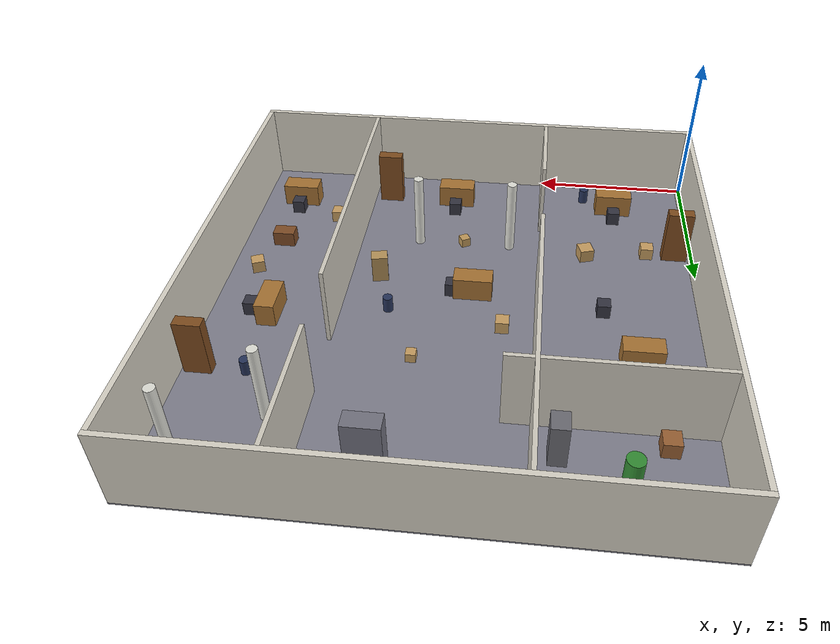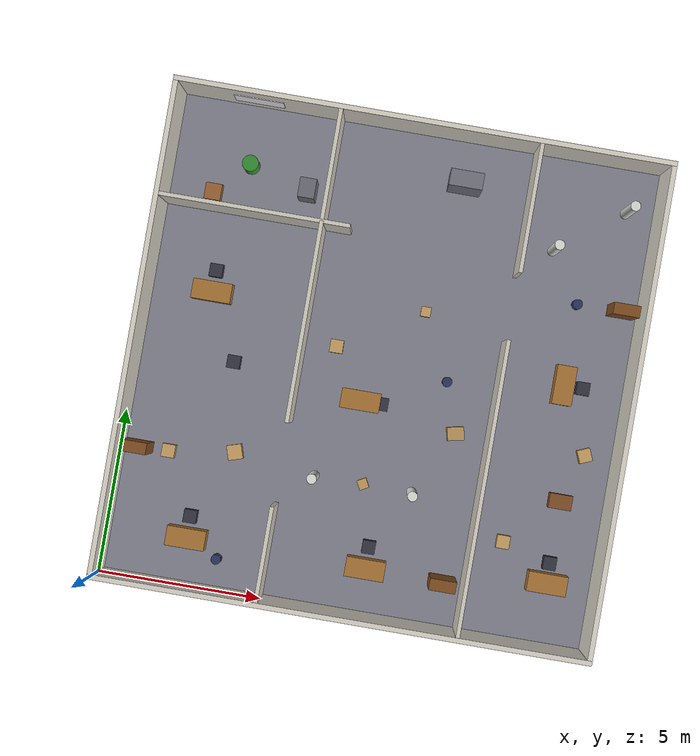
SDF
<?xml version="1.0" ?>
<sdf version="1.6">
  <world name="cluttered_office">

    <scene>
      <ambient>0.4 0.4 0.4 1</ambient>
      <background>0.7 0.7 0.7 1</background>
      <shadows>true</shadows>
    </scene>

    <physics type="ode">
      <real_time_update_rate>1000</real_time_update_rate>
      <max_step_size>0.001</max_step_size>
      <real_time_factor>1</real_time_factor>
      <ode>
        <solver>
          <type>quick</type>
          <iters>150</iters>
          <precon_iters>0</precon_iters>
          <sor>1.4</sor>
          <use_dynamic_moi_rescaling>1</use_dynamic_moi_rescaling>
        </solver>
        <constraints>
          <cfm>0</cfm>
          <erp>0.2</erp>
          <contact_max_correcting_vel>0.5</contact_max_correcting_vel>
          <contact_surface_layer>0.001</contact_surface_layer>
        </constraints>
      </ode>
    </physics>

    <include>
      <uri>model://sun</uri>
    </include>

    <!-- ===== GROUND PLANE ===== -->
    <model name="floor">
      <static>true</static>
      <pose>7.5 7.5 -0.025 0 0 0</pose>
      <link name="floor_link">
        <collision name="floor_collision">
          <geometry>
            <box>
              <size>15 15 0.05</size>
            </box>
          </geometry>
          <surface>
            <friction>
              <ode>
                <mu>1.0</mu>
                <mu2>1.0</mu2>
              </ode>
            </friction>
          </surface>
        </collision>
        <visual name="floor_visual">
          <geometry>
            <box>
              <size>15 15 0.05</size>
            </box>
          </geometry>
          <material>
            <ambient>0.35 0.35 0.38 1</ambient>
            <diffuse>0.5 0.5 0.55 1</diffuse>
            <specular>0.1 0.1 0.1 1</specular>
          </material>
        </visual>
      </link>
    </model>

    <!-- ===== OUTER WALLS ===== -->
    <model name="wall_south">
      <static>true</static>
      <pose>7.5 0.075 1.25 0 0 0</pose>
      <link name="wall_south_link">
        <collision name="wall_south_collision">
          <geometry>
            <box>
              <size>15 0.15 2.5</size>
            </box>
          </geometry>
        </collision>
        <visual name="wall_south_visual">
          <geometry>
            <box>
              <size>15 0.15 2.5</size>
            </box>
          </geometry>
          <material>
            <ambient>0.75 0.73 0.68 1</ambient>
            <diffuse>0.85 0.83 0.78 1</diffuse>
            <specular>0.05 0.05 0.05 1</specular>
          </material>
        </visual>
      </link>
    </model>

    <model name="wall_north">
      <static>true</static>
      <pose>7.5 14.925 1.25 0 0 0</pose>
      <link name="wall_north_link">
        <collision name="wall_north_collision">
          <geometry>
            <box>
              <size>15 0.15 2.5</size>
            </box>
          </geometry>
        </collision>
        <visual name="wall_north_visual">
          <geometry>
            <box>
              <size>15 0.15 2.5</size>
            </box>
          </geometry>
          <material>
            <ambient>0.75 0.73 0.68 1</ambient>
            <diffuse>0.85 0.83 0.78 1</diffuse>
            <specular>0.05 0.05 0.05 1</specular>
          </material>
        </visual>
      </link>
    </model>

    <model name="wall_west">
      <static>true</static>
      <pose>0.075 7.5 1.25 0 0 0</pose>
      <link name="wall_west_link">
        <collision name="wall_west_collision">
          <geometry>
            <box>
              <size>0.15 14.7 2.5</size>
            </box>
          </geometry>
        </collision>
        <visual name="wall_west_visual">
          <geometry>
            <box>
              <size>0.15 14.7 2.5</size>
            </box>
          </geometry>
          <material>
            <ambient>0.75 0.73 0.68 1</ambient>
            <diffuse>0.85 0.83 0.78 1</diffuse>
            <specular>0.05 0.05 0.05 1</specular>
          </material>
        </visual>
      </link>
    </model>

    <model name="wall_east">
      <static>true</static>
      <pose>14.925 7.5 1.25 0 0 0</pose>
      <link name="wall_east_link">
        <collision name="wall_east_collision">
          <geometry>
            <box>
              <size>0.15 14.7 2.5</size>
            </box>
          </geometry>
        </collision>
        <visual name="wall_east_visual">
          <geometry>
            <box>
              <size>0.15 14.7 2.5</size>
            </box>
          </geometry>
          <material>
            <ambient>0.75 0.73 0.68 1</ambient>
            <diffuse>0.85 0.83 0.78 1</diffuse>
            <specular>0.05 0.05 0.05 1</specular>
          </material>
        </visual>
      </link>
    </model>

    <!-- ===== INTERIOR WALL A (x=5) ===== -->
    <model name="interior_wall_A_lower">
      <static>true</static>
      <pose>5 1.575 1.25 0 0 0</pose>
      <link name="interior_wall_A_lower_link">
        <collision name="interior_wall_A_lower_collision">
          <geometry>
            <box>
              <size>0.12 2.85 2.5</size>
            </box>
          </geometry>
        </collision>
        <visual name="interior_wall_A_lower_visual">
          <geometry>
            <box>
              <size>0.12 2.85 2.5</size>
            </box>
          </geometry>
          <material>
            <ambient>0.72 0.70 0.65 1</ambient>
            <diffuse>0.82 0.80 0.75 1</diffuse>
            <specular>0.05 0.05 0.05 1</specular>
          </material>
        </visual>
      </link>
    </model>

    <model name="interior_wall_A_upper">
      <static>true</static>
      <pose>5 10.175 1.25 0 0 0</pose>
      <link name="interior_wall_A_upper_link">
        <collision name="interior_wall_A_upper_collision">
          <geometry>
            <box>
              <size>0.12 9.35 2.5</size>
            </box>
          </geometry>
        </collision>
        <visual name="interior_wall_A_upper_visual">
          <geometry>
            <box>
              <size>0.12 9.35 2.5</size>
            </box>
          </geometry>
          <material>
            <ambient>0.72 0.70 0.65 1</ambient>
            <diffuse>0.82 0.80 0.75 1</diffuse>
            <specular>0.05 0.05 0.05 1</specular>
          </material>
        </visual>
      </link>
    </model>

    <!-- ===== INTERIOR WALL B (x=11) ===== -->
    <model name="interior_wall_B_lower">
      <static>true</static>
      <pose>11 4.575 1.25 0 0 0</pose>
      <link name="interior_wall_B_lower_link">
        <collision name="interior_wall_B_lower_collision">
          <geometry>
            <box>
              <size>0.12 8.85 2.5</size>
            </box>
          </geometry>
        </collision>
        <visual name="interior_wall_B_lower_visual">
          <geometry>
            <box>
              <size>0.12 8.85 2.5</size>
            </box>
          </geometry>
          <material>
            <ambient>0.72 0.70 0.65 1</ambient>
            <diffuse>0.82 0.80 0.75 1</diffuse>
            <specular>0.05 0.05 0.05 1</specular>
          </material>
        </visual>
      </link>
    </model>

    <model name="interior_wall_B_upper">
      <static>true</static>
      <pose>11 12.925 1.25 0 0 0</pose>
      <link name="interior_wall_B_upper_link">
        <collision name="interior_wall_B_upper_collision">
          <geometry>
            <box>
              <size>0.12 3.85 2.5</size>
            </box>
          </geometry>
        </collision>
        <visual name="interior_wall_B_upper_visual">
          <geometry>
            <box>
              <size>0.12 3.85 2.5</size>
            </box>
          </geometry>
          <material>
            <ambient>0.72 0.70 0.65 1</ambient>
            <diffuse>0.82 0.80 0.75 1</diffuse>
            <specular>0.05 0.05 0.05 1</specular>
          </material>
        </visual>
      </link>
    </model>

    <!-- ===== INTERIOR WALL C (horizontal, y=11.5) ===== -->
    <model name="interior_wall_C">
      <static>true</static>
      <pose>3 11.5 1.25 0 0 0</pose>
      <link name="interior_wall_C_link">
        <collision name="interior_wall_C_collision">
          <geometry>
            <box>
              <size>5.7 0.12 2.5</size>
            </box>
          </geometry>
        </collision>
        <visual name="interior_wall_C_visual">
          <geometry>
            <box>
              <size>5.7 0.12 2.5</size>
            </box>
          </geometry>
          <material>
            <ambient>0.72 0.70 0.65 1</ambient>
            <diffuse>0.82 0.80 0.75 1</diffuse>
            <specular>0.05 0.05 0.05 1</specular>
          </material>
        </visual>
      </link>
    </model>

    <!-- ===== DESKS ===== -->
    <model name="desk_01">
      <static>true</static>
      <pose>2.5 1.5 0.375 0 0 0</pose>
      <link name="desk_01_link">
        <collision name="desk_01_collision">
          <geometry>
            <box>
              <size>1.2 0.6 0.75</size>
            </box>
          </geometry>
        </collision>
        <visual name="desk_01_visual">
          <geometry>
            <box>
              <size>1.2 0.6 0.75</size>
            </box>
          </geometry>
          <material>
            <ambient>0.55 0.35 0.15 1</ambient>
            <diffuse>0.65 0.45 0.2 1</diffuse>
            <specular>0.1 0.1 0.1 1</specular>
          </material>
        </visual>
      </link>
    </model>

    <model name="desk_02">
      <static>true</static>
      <pose>8 1.5 0.375 0 0 0</pose>
      <link name="desk_02_link">
        <collision name="desk_02_collision">
          <geometry>
            <box>
              <size>1.2 0.6 0.75</size>
            </box>
          </geometry>
        </collision>
        <visual name="desk_02_visual">
          <geometry>
            <box>
              <size>1.2 0.6 0.75</size>
            </box>
          </geometry>
          <material>
            <ambient>0.55 0.35 0.15 1</ambient>
            <diffuse>0.65 0.45 0.2 1</diffuse>
            <specular>0.1 0.1 0.1 1</specular>
          </material>
        </visual>
      </link>
    </model>

    <model name="desk_03">
      <static>true</static>
      <pose>7 6.5 0.375 0 0 0</pose>
      <link name="desk_03_link">
        <collision name="desk_03_collision">
          <geometry>
            <box>
              <size>1.2 0.6 0.75</size>
            </box>
          </geometry>
        </collision>
        <visual name="desk_03_visual">
          <geometry>
            <box>
              <size>1.2 0.6 0.75</size>
            </box>
          </geometry>
          <material>
            <ambient>0.55 0.35 0.15 1</ambient>
            <diffuse>0.65 0.45 0.2 1</diffuse>
            <specular>0.1 0.1 0.1 1</specular>
          </material>
        </visual>
      </link>
    </model>

    <model name="desk_04">
      <static>true</static>
      <pose>2 9 0.375 0 0 0</pose>
      <link name="desk_04_link">
        <collision name="desk_04_collision">
          <geometry>
            <box>
              <size>1.2 0.6 0.75</size>
            </box>
          </geometry>
        </collision>
        <visual name="desk_04_visual">
          <geometry>
            <box>
              <size>1.2 0.6 0.75</size>
            </box>
          </geometry>
          <material>
            <ambient>0.55 0.35 0.15 1</ambient>
            <diffuse>0.65 0.45 0.2 1</diffuse>
            <specular>0.1 0.1 0.1 1</specular>
          </material>
        </visual>
      </link>
    </model>

    <model name="desk_05">
      <static>true</static>
      <pose>13.5 2 0.375 0 0 0</pose>
      <link name="desk_05_link">
        <collision name="desk_05_collision">
          <geometry>
            <box>
              <size>1.2 0.6 0.75</size>
            </box>
          </geometry>
        </collision>
        <visual name="desk_05_visual">
          <geometry>
            <box>
              <size>1.2 0.6 0.75</size>
            </box>
          </geometry>
          <material>
            <ambient>0.55 0.35 0.15 1</ambient>
            <diffuse>0.65 0.45 0.2 1</diffuse>
            <specular>0.1 0.1 0.1 1</specular>
          </material>
        </visual>
      </link>
    </model>

    <model name="desk_06">
      <static>true</static>
      <pose>13 8 0.375 0 0 1.57</pose>
      <link name="desk_06_link">
        <collision name="desk_06_collision">
          <geometry>
            <box>
              <size>1.2 0.6 0.75</size>
            </box>
          </geometry>
        </collision>
        <visual name="desk_06_visual">
          <geometry>
            <box>
              <size>1.2 0.6 0.75</size>
            </box>
          </geometry>
          <material>
            <ambient>0.55 0.35 0.15 1</ambient>
            <diffuse>0.65 0.45 0.2 1</diffuse>
            <specular>0.1 0.1 0.1 1</specular>
          </material>
        </visual>
      </link>
    </model>

    <!-- ===== CHAIRS ===== -->
    <model name="chair_01">
      <static>true</static>
      <pose>2.5 2.15 0.225 0 0 0</pose>
      <link name="chair_01_link">
        <collision name="chair_01_collision">
          <geometry>
            <box>
              <size>0.4 0.4 0.45</size>
            </box>
          </geometry>
        </collision>
        <visual name="chair_01_visual">
          <geometry>
            <box>
              <size>0.4 0.4 0.45</size>
            </box>
          </geometry>
          <material>
            <ambient>0.15 0.15 0.18 1</ambient>
            <diffuse>0.2 0.2 0.25 1</diffuse>
            <specular>0.05 0.05 0.05 1</specular>
          </material>
        </visual>
      </link>
    </model>

    <model name="chair_02">
      <static>true</static>
      <pose>8 2.15 0.225 0 0 0</pose>
      <link name="chair_02_link">
        <collision name="chair_02_collision">
          <geometry>
            <box>
              <size>0.4 0.4 0.45</size>
            </box>
          </geometry>
        </collision>
        <visual name="chair_02_visual">
          <geometry>
            <box>
              <size>0.4 0.4 0.45</size>
            </box>
          </geometry>
          <material>
            <ambient>0.15 0.15 0.18 1</ambient>
            <diffuse>0.2 0.2 0.25 1</diffuse>
            <specular>0.05 0.05 0.05 1</specular>
          </material>
        </visual>
      </link>
    </model>

    <model name="chair_03">
      <static>true</static>
      <pose>7.65 6.5 0.225 0 0 0</pose>
      <link name="chair_03_link">
        <collision name="chair_03_collision">
          <geometry>
            <box>
              <size>0.4 0.4 0.45</size>
            </box>
          </geometry>
        </collision>
        <visual name="chair_03_visual">
          <geometry>
            <box>
              <size>0.4 0.4 0.45</size>
            </box>
          </geometry>
          <material>
            <ambient>0.15 0.15 0.18 1</ambient>
            <diffuse>0.2 0.2 0.25 1</diffuse>
            <specular>0.05 0.05 0.05 1</specular>
          </material>
        </visual>
      </link>
    </model>

    <model name="chair_04">
      <static>true</static>
      <pose>2 9.65 0.225 0 0 0</pose>
      <link name="chair_04_link">
        <collision name="chair_04_collision">
          <geometry>
            <box>
              <size>0.4 0.4 0.45</size>
            </box>
          </geometry>
        </collision>
        <visual name="chair_04_visual">
          <geometry>
            <box>
              <size>0.4 0.4 0.45</size>
            </box>
          </geometry>
          <material>
            <ambient>0.15 0.15 0.18 1</ambient>
            <diffuse>0.2 0.2 0.25 1</diffuse>
            <specular>0.05 0.05 0.05 1</specular>
          </material>
        </visual>
      </link>
    </model>

    <model name="chair_05">
      <static>true</static>
      <pose>13.5 2.6 0.225 0 0 0</pose>
      <link name="chair_05_link">
        <collision name="chair_05_collision">
          <geometry>
            <box>
              <size>0.4 0.4 0.45</size>
            </box>
          </geometry>
        </collision>
        <visual name="chair_05_visual">
          <geometry>
            <box>
              <size>0.4 0.4 0.45</size>
            </box>
          </geometry>
          <material>
            <ambient>0.15 0.15 0.18 1</ambient>
            <diffuse>0.2 0.2 0.25 1</diffuse>
            <specular>0.05 0.05 0.05 1</specular>
          </material>
        </visual>
      </link>
    </model>

    <model name="chair_06">
      <static>true</static>
      <pose>3 7 0.225 0 0 0</pose>
      <link name="chair_06_link">
        <collision name="chair_06_collision">
          <geometry>
            <box>
              <size>0.4 0.4 0.45</size>
            </box>
          </geometry>
        </collision>
        <visual name="chair_06_visual">
          <geometry>
            <box>
              <size>0.4 0.4 0.45</size>
            </box>
          </geometry>
          <material>
            <ambient>0.15 0.15 0.18 1</ambient>
            <diffuse>0.2 0.2 0.25 1</diffuse>
            <specular>0.05 0.05 0.05 1</specular>
          </material>
        </visual>
      </link>
    </model>

    <model name="chair_07">
      <static>true</static>
      <pose>13.6 8 0.225 0 0 0</pose>
      <link name="chair_07_link">
        <collision name="chair_07_collision">
          <geometry>
            <box>
              <size>0.4 0.4 0.45</size>
            </box>
          </geometry>
        </collision>
        <visual name="chair_07_visual">
          <geometry>
            <box>
              <size>0.4 0.4 0.45</size>
            </box>
          </geometry>
          <material>
            <ambient>0.15 0.15 0.18 1</ambient>
            <diffuse>0.2 0.2 0.25 1</diffuse>
            <specular>0.05 0.05 0.05 1</specular>
          </material>
        </visual>
      </link>
    </model>

    <!-- ===== BOOKSHELVES / CABINETS ===== -->
    <model name="bookshelf_01">
      <static>true</static>
      <pose>0.6 4 0.9 0 0 0</pose>
      <link name="bookshelf_01_link">
        <collision name="bookshelf_01_collision">
          <geometry>
            <box>
              <size>0.8 0.35 1.8</size>
            </box>
          </geometry>
        </collision>
        <visual name="bookshelf_01_visual">
          <geometry>
            <box>
              <size>0.8 0.35 1.8</size>
            </box>
          </geometry>
          <material>
            <ambient>0.4 0.2 0.08 1</ambient>
            <diffuse>0.5 0.3 0.12 1</diffuse>
            <specular>0.08 0.08 0.08 1</specular>
          </material>
        </visual>
      </link>
    </model>

    <model name="bookshelf_02">
      <static>true</static>
      <pose>10.35 1.5 0.9 0 0 0</pose>
      <link name="bookshelf_02_link">
        <collision name="bookshelf_02_collision">
          <geometry>
            <box>
              <size>0.8 0.35 1.8</size>
            </box>
          </geometry>
        </collision>
        <visual name="bookshelf_02_visual">
          <geometry>
            <box>
              <size>0.8 0.35 1.8</size>
            </box>
          </geometry>
          <material>
            <ambient>0.4 0.2 0.08 1</ambient>
            <diffuse>0.5 0.3 0.12 1</diffuse>
            <specular>0.08 0.08 0.08 1</specular>
          </material>
        </visual>
      </link>
    </model>

    <model name="bookshelf_03">
      <static>true</static>
      <pose>14.35 10.5 0.9 0 0 0</pose>
      <link name="bookshelf_03_link">
        <collision name="bookshelf_03_collision">
          <geometry>
            <box>
              <size>0.8 0.35 1.8</size>
            </box>
          </geometry>
        </collision>
        <visual name="bookshelf_03_visual">
          <geometry>
            <box>
              <size>0.8 0.35 1.8</size>
            </box>
          </geometry>
          <material>
            <ambient>0.4 0.2 0.08 1</ambient>
            <diffuse>0.5 0.3 0.12 1</diffuse>
            <specular>0.08 0.08 0.08 1</specular>
          </material>
        </visual>
      </link>
    </model>

    <model name="cabinet_01">
      <static>true</static>
      <pose>9 13.5 1.0 0 0 0</pose>
      <link name="cabinet_01_link">
        <collision name="cabinet_01_collision">
          <geometry>
            <box>
              <size>1.0 0.5 2.0</size>
            </box>
          </geometry>
        </collision>
        <visual name="cabinet_01_visual">
          <geometry>
            <box>
              <size>1.0 0.5 2.0</size>
            </box>
          </geometry>
          <material>
            <ambient>0.35 0.35 0.4 1</ambient>
            <diffuse>0.45 0.45 0.5 1</diffuse>
            <specular>0.1 0.1 0.1 1</specular>
          </material>
        </visual>
      </link>
    </model>

    <!-- ===== PILLARS / COLUMNS ===== -->
    <model name="pillar_01">
      <static>true</static>
      <pose>6 4 1.25 0 0 0</pose>
      <link name="pillar_01_link">
        <collision name="pillar_01_collision">
          <geometry>
            <cylinder>
              <radius>0.15</radius>
              <length>2.5</length>
            </cylinder>
          </geometry>
        </collision>
        <visual name="pillar_01_visual">
          <geometry>
            <cylinder>
              <radius>0.15</radius>
              <length>2.5</length>
            </cylinder>
          </geometry>
          <material>
            <ambient>0.8 0.8 0.78 1</ambient>
            <diffuse>0.88 0.88 0.85 1</diffuse>
            <specular>0.05 0.05 0.05 1</specular>
          </material>
        </visual>
      </link>
    </model>

    <model name="pillar_02">
      <static>true</static>
      <pose>9 4 1.25 0 0 0</pose>
      <link name="pillar_02_link">
        <collision name="pillar_02_collision">
          <geometry>
            <cylinder>
              <radius>0.15</radius>
              <length>2.5</length>
            </cylinder>
          </geometry>
        </collision>
        <visual name="pillar_02_visual">
          <geometry>
            <cylinder>
              <radius>0.15</radius>
              <length>2.5</length>
            </cylinder>
          </geometry>
          <material>
            <ambient>0.8 0.8 0.78 1</ambient>
            <diffuse>0.88 0.88 0.85 1</diffuse>
            <specular>0.05 0.05 0.05 1</specular>
          </material>
        </visual>
      </link>
    </model>

    <model name="pillar_03">
      <static>true</static>
      <pose>12 12 1.25 0 0 0</pose>
      <link name="pillar_03_link">
        <collision name="pillar_03_collision">
          <geometry>
            <cylinder>
              <radius>0.15</radius>
              <length>2.5</length>
            </cylinder>
          </geometry>
        </collision>
        <visual name="pillar_03_visual">
          <geometry>
            <cylinder>
              <radius>0.15</radius>
              <length>2.5</length>
            </cylinder>
          </geometry>
          <material>
            <ambient>0.8 0.8 0.78 1</ambient>
            <diffuse>0.88 0.88 0.85 1</diffuse>
            <specular>0.05 0.05 0.05 1</specular>
          </material>
        </visual>
      </link>
    </model>

    <model name="pillar_04">
      <static>true</static>
      <pose>14 13.5 1.25 0 0 0</pose>
      <link name="pillar_04_link">
        <collision name="pillar_04_collision">
          <geometry>
            <cylinder>
              <radius>0.15</radius>
              <length>2.5</length>
            </cylinder>
          </geometry>
        </collision>
        <visual name="pillar_04_visual">
          <geometry>
            <cylinder>
              <radius>0.15</radius>
              <length>2.5</length>
            </cylinder>
          </geometry>
          <material>
            <ambient>0.8 0.8 0.78 1</ambient>
            <diffuse>0.88 0.88 0.85 1</diffuse>
            <specular>0.05 0.05 0.05 1</specular>
          </material>
        </visual>
      </link>
    </model>

    <!-- ===== WASTE BINS ===== -->
    <model name="waste_bin_01">
      <static>true</static>
      <pose>3.5 1 0.25 0 0 0</pose>
      <link name="waste_bin_01_link">
        <collision name="waste_bin_01_collision">
          <geometry>
            <cylinder>
              <radius>0.15</radius>
              <length>0.5</length>
            </cylinder>
          </geometry>
        </collision>
        <visual name="waste_bin_01_visual">
          <geometry>
            <cylinder>
              <radius>0.15</radius>
              <length>0.5</length>
            </cylinder>
          </geometry>
          <material>
            <ambient>0.1 0.15 0.25 1</ambient>
            <diffuse>0.15 0.2 0.35 1</diffuse>
            <specular>0.05 0.05 0.05 1</specular>
          </material>
        </visual>
      </link>
    </model>

    <model name="waste_bin_02">
      <static>true</static>
      <pose>9.5 7.5 0.25 0 0 0</pose>
      <link name="waste_bin_02_link">
        <collision name="waste_bin_02_collision">
          <geometry>
            <cylinder>
              <radius>0.15</radius>
              <length>0.5</length>
            </cylinder>
          </geometry>
        </collision>
        <visual name="waste_bin_02_visual">
          <geometry>
            <cylinder>
              <radius>0.15</radius>
              <length>0.5</length>
            </cylinder>
          </geometry>
          <material>
            <ambient>0.1 0.15 0.25 1</ambient>
            <diffuse>0.15 0.2 0.35 1</diffuse>
            <specular>0.05 0.05 0.05 1</specular>
          </material>
        </visual>
      </link>
    </model>

    <model name="waste_bin_03">
      <static>true</static>
      <pose>13 10.5 0.25 0 0 0</pose>
      <link name="waste_bin_03_link">
        <collision name="waste_bin_03_collision">
          <geometry>
            <cylinder>
              <radius>0.15</radius>
              <length>0.5</length>
            </cylinder>
          </geometry>
        </collision>
        <visual name="waste_bin_03_visual">
          <geometry>
            <cylinder>
              <radius>0.15</radius>
              <length>0.5</length>
            </cylinder>
          </geometry>
          <material>
            <ambient>0.1 0.15 0.25 1</ambient>
            <diffuse>0.15 0.2 0.35 1</diffuse>
            <specular>0.05 0.05 0.05 1</specular>
          </material>
        </visual>
      </link>
    </model>

    <!-- ===== CARDBOARD BOXES ===== -->
    <model name="box_01">
      <static>true</static>
      <pose>1.5 4 0.2 0 0 0</pose>
      <link name="box_01_link">
        <collision name="box_01_collision">
          <geometry>
            <box>
              <size>0.4 0.4 0.4</size>
            </box>
          </geometry>
        </collision>
        <visual name="box_01_visual">
          <geometry>
            <box>
              <size>0.4 0.4 0.4</size>
            </box>
          </geometry>
          <material>
            <ambient>0.7 0.55 0.3 1</ambient>
            <diffuse>0.78 0.62 0.38 1</diffuse>
            <specular>0.02 0.02 0.02 1</specular>
          </material>
        </visual>
      </link>
    </model>

    <model name="box_02">
      <static>true</static>
      <pose>6 8 0.2 0 0 0</pose>
      <link name="box_02_link">
        <collision name="box_02_collision">
          <geometry>
            <box>
              <size>0.4 0.4 0.4</size>
            </box>
          </geometry>
        </collision>
        <visual name="box_02_visual">
          <geometry>
            <box>
              <size>0.4 0.4 0.4</size>
            </box>
          </geometry>
          <material>
            <ambient>0.7 0.55 0.3 1</ambient>
            <diffuse>0.78 0.62 0.38 1</diffuse>
            <specular>0.02 0.02 0.02 1</specular>
          </material>
        </visual>
      </link>
    </model>

    <model name="box_03">
      <static>true</static>
      <pose>12 3 0.2 0 0 0</pose>
      <link name="box_03_link">
        <collision name="box_03_collision">
          <geometry>
            <box>
              <size>0.4 0.4 0.4</size>
            </box>
          </geometry>
        </collision>
        <visual name="box_03_visual">
          <geometry>
            <box>
              <size>0.4 0.4 0.4</size>
            </box>
          </geometry>
          <material>
            <ambient>0.7 0.55 0.3 1</ambient>
            <diffuse>0.78 0.62 0.38 1</diffuse>
            <specular>0.02 0.02 0.02 1</specular>
          </material>
        </visual>
      </link>
    </model>

    <model name="box_04">
      <static>true</static>
      <pose>14 6 0.2 0 0 0.4</pose>
      <link name="box_04_link">
        <collision name="box_04_collision">
          <geometry>
            <box>
              <size>0.4 0.4 0.4</size>
            </box>
          </geometry>
        </collision>
        <visual name="box_04_visual">
          <geometry>
            <box>
              <size>0.4 0.4 0.4</size>
            </box>
          </geometry>
          <material>
            <ambient>0.7 0.55 0.3 1</ambient>
            <diffuse>0.78 0.62 0.38 1</diffuse>
            <specular>0.02 0.02 0.02 1</specular>
          </material>
        </visual>
      </link>
    </model>

    <model name="box_05">
      <static>true</static>
      <pose>3.5 4.3 0.2 0 0 0.3</pose>
      <link name="box_05_link">
        <collision name="box_05_collision">
          <geometry>
            <box>
              <size>0.45 0.45 0.45</size>
            </box>
          </geometry>
        </collision>
        <visual name="box_05_visual">
          <geometry>
            <box>
              <size>0.45 0.45 0.45</size>
            </box>
          </geometry>
          <material>
            <ambient>0.7 0.55 0.3 1</ambient>
            <diffuse>0.78 0.62 0.38 1</diffuse>
            <specular>0.02 0.02 0.02 1</specular>
          </material>
        </visual>
      </link>
    </model>

    <model name="box_06">
      <static>true</static>
      <pose>8.5 9.5 0.15 0 0 0</pose>
      <link name="box_06_link">
        <collision name="box_06_collision">
          <geometry>
            <box>
              <size>0.3 0.3 0.3</size>
            </box>
          </geometry>
        </collision>
        <visual name="box_06_visual">
          <geometry>
            <box>
              <size>0.3 0.3 0.3</size>
            </box>
          </geometry>
          <material>
            <ambient>0.7 0.55 0.3 1</ambient>
            <diffuse>0.78 0.62 0.38 1</diffuse>
            <specular>0.02 0.02 0.02 1</specular>
          </material>
        </visual>
      </link>
    </model>

    <!-- ===== SCATTERED CLUTTER ===== -->
    <model name="clutter_plant">
      <static>true</static>
      <pose>2.5 13 0.4 0 0 0</pose>
      <link name="clutter_plant_link">
        <collision name="clutter_plant_collision">
          <geometry>
            <cylinder>
              <radius>0.25</radius>
              <length>0.8</length>
            </cylinder>
          </geometry>
        </collision>
        <visual name="clutter_plant_visual">
          <geometry>
            <cylinder>
              <radius>0.25</radius>
              <length>0.8</length>
            </cylinder>
          </geometry>
          <material>
            <ambient>0.15 0.45 0.15 1</ambient>
            <diffuse>0.2 0.55 0.2 1</diffuse>
            <specular>0.03 0.03 0.03 1</specular>
          </material>
        </visual>
      </link>
    </model>

    <model name="clutter_side_table">
      <static>true</static>
      <pose>1.5 12 0.25 0 0 0</pose>
      <link name="clutter_side_table_link">
        <collision name="clutter_side_table_collision">
          <geometry>
            <box>
              <size>0.5 0.5 0.5</size>
            </box>
          </geometry>
        </collision>
        <visual name="clutter_side_table_visual">
          <geometry>
            <box>
              <size>0.5 0.5 0.5</size>
            </box>
          </geometry>
          <material>
            <ambient>0.5 0.3 0.15 1</ambient>
            <diffuse>0.6 0.38 0.2 1</diffuse>
            <specular>0.08 0.08 0.08 1</specular>
          </material>
        </visual>
      </link>
    </model>

    <model name="clutter_filing_cabinet">
      <static>true</static>
      <pose>4.35 12.5 0.7 0 0 0</pose>
      <link name="clutter_filing_cabinet_link">
        <collision name="clutter_filing_cabinet_collision">
          <geometry>
            <box>
              <size>0.5 0.6 1.4</size>
            </box>
          </geometry>
        </collision>
        <visual name="clutter_filing_cabinet_visual">
          <geometry>
            <box>
              <size>0.5 0.6 1.4</size>
            </box>
          </geometry>
          <material>
            <ambient>0.35 0.35 0.38 1</ambient>
            <diffuse>0.42 0.42 0.45 1</diffuse>
            <specular>0.1 0.1 0.1 1</specular>
          </material>
        </visual>
      </link>
    </model>

    <model name="clutter_tall_box">
      <static>true</static>
      <pose>10 6 0.45 0 0 0.2</pose>
      <link name="clutter_tall_box_link">
        <collision name="clutter_tall_box_collision">
          <geometry>
            <box>
              <size>0.5 0.4 0.9</size>
            </box>
          </geometry>
        </collision>
        <visual name="clutter_tall_box_visual">
          <geometry>
            <box>
              <size>0.5 0.4 0.9</size>
            </box>
          </geometry>
          <material>
            <ambient>0.65 0.5 0.28 1</ambient>
            <diffuse>0.72 0.58 0.35 1</diffuse>
            <specular>0.02 0.02 0.02 1</specular>
          </material>
        </visual>
      </link>
    </model>

    <model name="clutter_low_shelf">
      <static>true</static>
      <pose>13.5 4.5 0.25 0 0 0</pose>
      <link name="clutter_low_shelf_link">
        <collision name="clutter_low_shelf_collision">
          <geometry>
            <box>
              <size>0.7 0.45 0.5</size>
            </box>
          </geometry>
        </collision>
        <visual name="clutter_low_shelf_visual">
          <geometry>
            <box>
              <size>0.7 0.45 0.5</size>
            </box>
          </geometry>
          <material>
            <ambient>0.4 0.22 0.1 1</ambient>
            <diffuse>0.5 0.3 0.15 1</diffuse>
            <specular>0.08 0.08 0.08 1</specular>
          </material>
        </visual>
      </link>
    </model>

    <model name="clutter_small_box_01">
      <static>true</static>
      <pose>7.5 4 0.15 0 0 0.5</pose>
      <link name="clutter_small_box_01_link">
        <collision name="clutter_small_box_01_collision">
          <geometry>
            <box>
              <size>0.3 0.3 0.3</size>
            </box>
          </geometry>
        </collision>
        <visual name="clutter_small_box_01_visual">
          <geometry>
            <box>
              <size>0.3 0.3 0.3</size>
            </box>
          </geometry>
          <material>
            <ambient>0.68 0.52 0.28 1</ambient>
            <diffuse>0.75 0.6 0.35 1</diffuse>
            <specular>0.02 0.02 0.02 1</specular>
          </material>
        </visual>
      </link>
    </model>

    <!-- ===== WHITEBOARD ON NORTH WALL (zone 1) ===== -->
    <model name="whiteboard">
      <static>true</static>
      <pose>2.5 14.85 1.2 0 0 0</pose>
      <link name="whiteboard_link">
        <collision name="whiteboard_collision">
          <geometry>
            <box>
              <size>1.5 0.05 1.0</size>
            </box>
          </geometry>
        </collision>
        <visual name="whiteboard_visual">
          <geometry>
            <box>
              <size>1.5 0.05 1.0</size>
            </box>
          </geometry>
          <material>
            <ambient>0.9 0.9 0.92 1</ambient>
            <diffuse>0.94 0.94 0.96 1</diffuse>
            <specular>0.15 0.15 0.15 1</specular>
          </material>
        </visual>
      </link>
    </model>

  </world>
</sdf>
